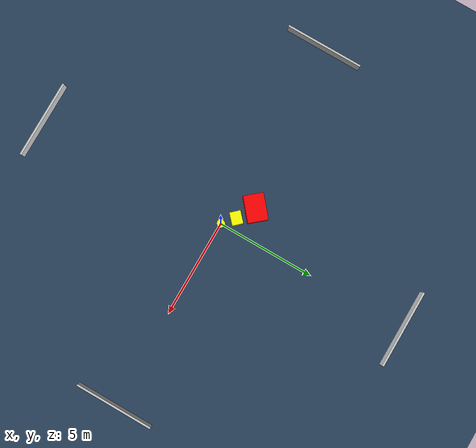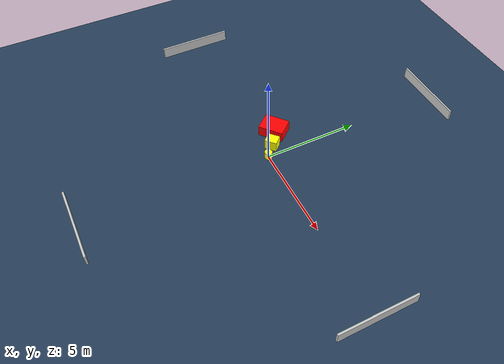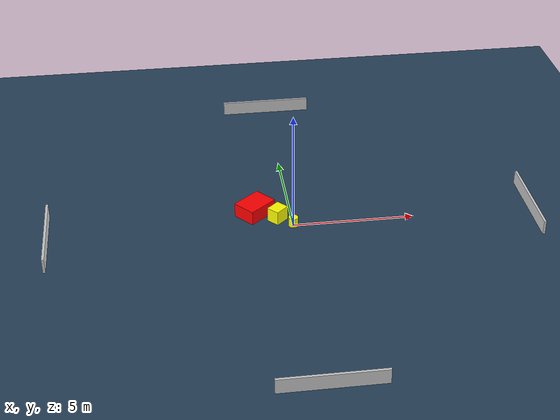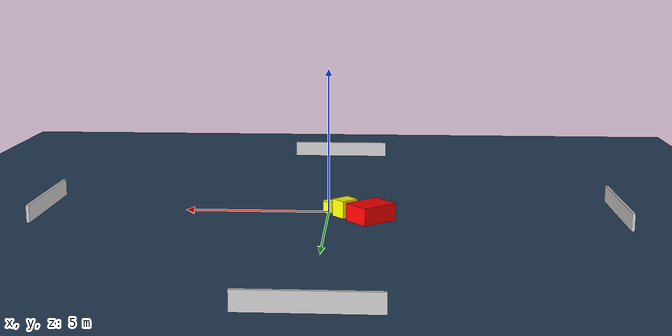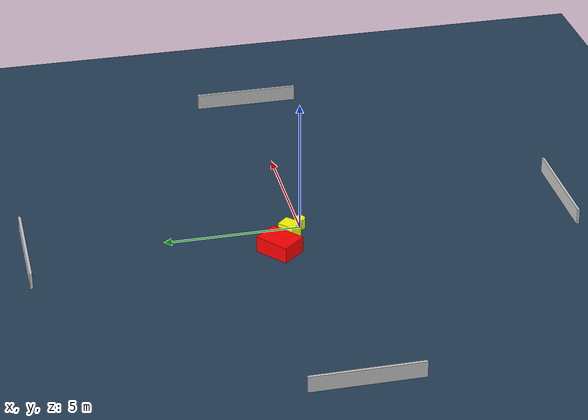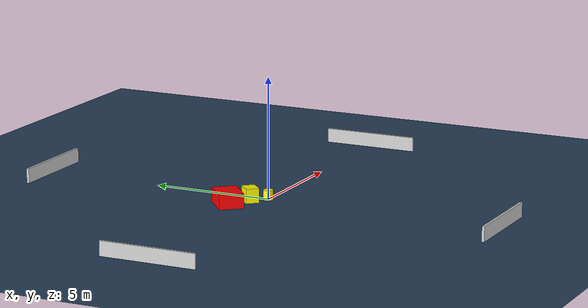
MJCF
<?xml version="1.0" ?>
<mujoco model="generated_environment">
  <option timestep="0.01" integrator="RK4" cone="elliptic"/>
  <default>
    <geom density="1"/>
  </default>
  <asset>
    <texture builtin="gradient" height="3072" name="skybox" rgb1="0.3 0.5 0.7" rgb2="0 0 0" type="skybox" width="512"/>
    <texture builtin="checker" height="300" name="groundplane" rgb1="0.2 0.3 0.4" rgb2="0.1 0.2 0.3" type="2d" width="300"/>
    <material name="groundplane" reflectance="0.2" texrepeat="5 5" texture="groundplane"/>
  </asset>
  <worldbody>
    <light dir="0 0 -1" directional="true" pos="0 0 1.5"/>
    <geom condim="3" friction="0.5 0.005 0.001" material="groundplane" name="floor" pos="0 0 0" size="0 0 0.05" type="plane"/>
    <body name="walls">
      <geom name="wall_1" condim="4" pos="-10.0 0.0 0.3" rgba="0.800000011920929 0.800000011920929 0.800000011920929 1.0" size="0.05 2.0 0.3" type="box"/>
      <geom name="wall_2" condim="4" pos="10.0 0.0 0.3" rgba="0.800000011920929 0.800000011920929 0.800000011920929 1.0" size="0.05 2.0 0.3" type="box"/>
      <geom name="wall_3" condim="4" pos="0.0 -10.0 0.3" rgba="0.800000011920929 0.800000011920929 0.800000011920929 1.0" size="2.0 0.05 0.3" type="box"/>
      <geom name="wall_4" condim="4" pos="0.0 10.0 0.3" rgba="0.800000011920929 0.800000011920929 0.800000011920929 1.0" size="2.0 0.05 0.3" type="box"/>
    </body>
    <body name="robot">
      <joint name="joint_x" type="slide" pos="0 0 0" axis="1 0 0"/>
      <joint name="joint_y" type="slide" pos="0 0 0" axis="0 1 0"/>
      <geom name="robot" type="cylinder" pos="0.0 0.0 0.2" size="0.2 0.2 0.0" mass="5.0" friction="1.0 0.005 0.0001" condim="4" rgba="1.0 1.0 0.0 1.0"/>
    </body>
    <body name="obstacle_1_movable">
      <geom name="obstacle_1_movable" condim="4" pos="-0.5851359049542628 0.5106585012845491 0.3" euler="0 0 42.811536434864976" friction="0.0 0.005 0.001" rgba="1.0 1.0 0.0 1.0" size="0.3230787690397206 0.2745003431155021 0.3" type="box" mass="0.1"/>
      <joint type="free"/>
    </body>
    <body name="obstacle_2_static">
      <geom name="obstacle_2_static" condim="4" pos="-1.4733086015561117 1.0635143445227393 0.3" euler="0 0 310.2495637711537" friction="0.0 0.005 0.001" rgba="1.0 0.0 0.0 1.0" size="0.5059958379952649 0.6696723715377733 0.3" type="box"/>
    </body>
  </worldbody>
  <actuator>
    <motor name="actuator_x" joint="joint_x" gear="1" ctrlrange="-1 1"/>
    <motor name="actuator_y" joint="joint_y" gear="1" ctrlrange="-1 1"/>
  </actuator>
</mujoco>
